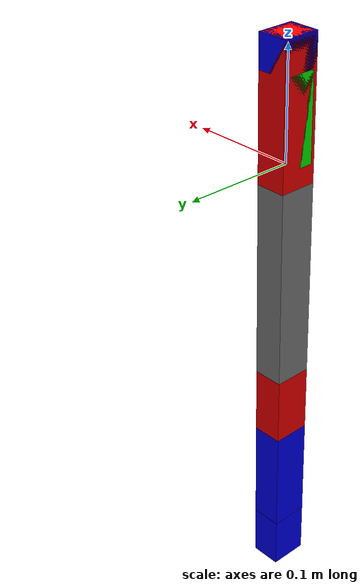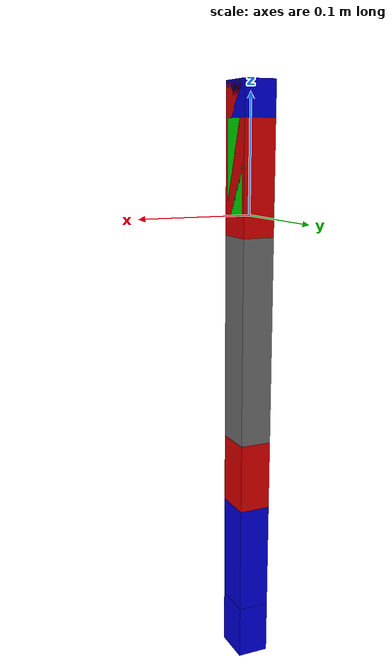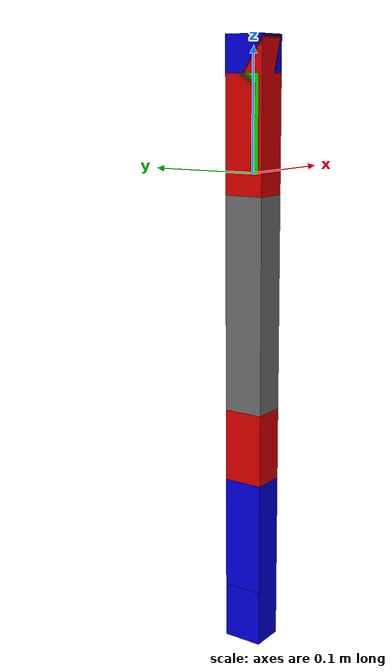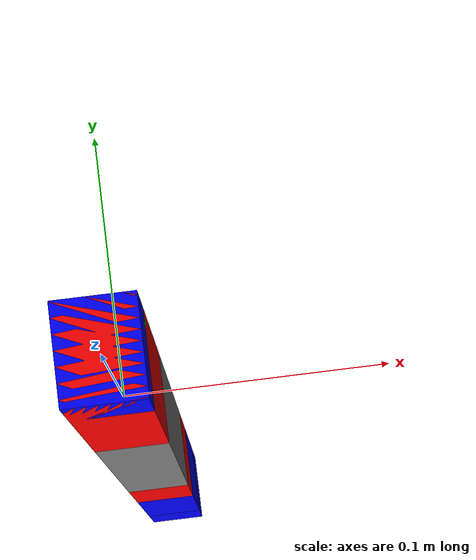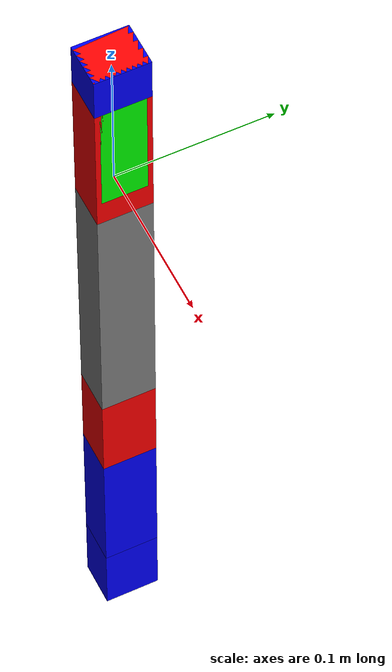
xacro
<?xml version="1.0"?>
<robot xmlns:xacro="http://www.ros.org/wiki/xacro" name="greenguardian">
    <xacro:arg name="initial_positions_file" default="initial_positions.yaml" />

    <!-- Import greenguardian urdf file -->
    <xacro:include filename="$(find guardian_description)/urdf/extra/manipulator.urdf" />

    <!-- Import control_xacro -->
    <xacro:include filename="greenguardian.ros2_control.xacro" />

    <xacro:greenguardian_ros2_control name="FakeSystem" initial_positions_file="$(arg initial_positions_file)"/>

</robot>

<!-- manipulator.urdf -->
<!-- |    This document was autogenerated by xacro from robot.urdf.xacro               | -->
<!-- |    EDITING THIS FILE BY HAND IS NOT RECOMMENDED                                 | -->
<robot name="greenguardian">
  <link name="world"/>
  <material name="black">
    <color rgba="0 0 0 1"/>
  </material>
  <material name="grey">
    <color rgba="0.5 0.5 0.5 1"/>
  </material>
  <material name="white">
    <color rgba="1 1 1 1"/>
  </material>
  <material name="red">
    <color rgba="1 0 0 1"/>
  </material>
  <material name="green">
    <color rgba="0 1 0 1"/>
  </material>
  <material name="blue">
    <color rgba="0 0 1 1"/>
  </material>
  <link name="manipulator_base_link">
    <visual>
      <origin rpy="0 0 0" xyz="0 0 0.03965"/>
      <geometry>
        <box size="0.0285 0.0285 0.0793"/>
      </geometry>
      <material name="green"/>
    </visual>
    <collision>
      <origin rpy="0 0 0" xyz="0 0 0.03965"/>
      <geometry>
        <box size="0.0285 0.0285 0.0793"/>
      </geometry>
    </collision>
    <inertial>
      <origin rpy="0 0 0" xyz="0 0 0.03965"/>
      <mass value="1.0"/>
      <inertia ixx="0.0005917283333333333" ixy="0.0" ixz="0.0" iyy="0.0005917283333333333" iyz="0.0" izz="0.000135375"/>
    </inertial>
  </link>
  <link name="link_1">
    <visual>
      <origin rpy="0 0 0" xyz="0 0 0.015"/>
      <geometry>
        <box size="0.0285 0.035 0.03"/>
      </geometry>
      <material name="blue"/>
    </visual>
    <collision>
      <origin rpy="0 0 0" xyz="0 0 0.015"/>
      <geometry>
        <box size="0.0285 0.035 0.03"/>
      </geometry>
    </collision>
    <inertial>
      <origin rpy="0 0 0" xyz="0 0 0.015"/>
      <mass value="1.0"/>
      <inertia ixx="0.00017708333333333335" ixy="0.0" ixz="0.0" iyy="0.0001426875" iyz="0.0" izz="0.00016977083333333332"/>
    </inertial>
  </link>
  <link name="link_2">
    <visual>
      <origin rpy="0 0 0" xyz="0 0 0.0635"/>
      <geometry>
        <box size="0.0285 0.035 0.127"/>
      </geometry>
      <material name="red"/>
    </visual>
    <collision>
      <origin rpy="0 0 0" xyz="0 0 0.0635"/>
      <geometry>
        <box size="0.0285 0.035 0.127"/>
      </geometry>
    </collision>
    <inertial>
      <origin rpy="0 0 0" xyz="0 0 0.0635"/>
      <mass value="1.0"/>
      <inertia ixx="0.0014461666666666668" ixy="0.0" ixz="0.0" iyy="0.0014117708333333335" iyz="0.0" izz="0.00016977083333333332"/>
    </inertial>
  </link>
  <link name="link_3">
    <visual>
      <origin rpy="0 0 0" xyz="0 0 0.092075"/>
      <geometry>
        <box size="0.0285 0.035 0.18415"/>
      </geometry>
      <material name="grey"/>
    </visual>
    <collision>
      <origin rpy="0 0 0" xyz="0 0 0.092075"/>
      <geometry>
        <box size="0.0285 0.035 0.18415"/>
      </geometry>
    </collision>
    <inertial>
      <origin rpy="0 0 0" xyz="0 0 0.092075"/>
      <mass value="1.0"/>
      <inertia ixx="0.0029280185416666665" ixy="0.0" ixz="0.0" iyy="0.0028936227083333336" iyz="0.0" izz="0.00016977083333333332"/>
    </inertial>
  </link>
  <link name="link_4">
    <visual>
      <origin rpy="0 0 0" xyz="0 0 0.03175"/>
      <geometry>
        <box size="0.0285 0.035 0.0635"/>
      </geometry>
      <material name="red"/>
    </visual>
    <collision>
      <origin rpy="0 0 0" xyz="0 0 0.03175"/>
      <geometry>
        <box size="0.0285 0.035 0.0635"/>
      </geometry>
    </collision>
    <inertial>
      <origin rpy="0 0 0" xyz="0 0 0.03175"/>
      <mass value="1.0"/>
      <inertia ixx="0.0004381041666666667" ixy="0.0" ixz="0.0" iyy="0.0004037083333333333" iyz="0.0" izz="0.00016977083333333332"/>
    </inertial>
  </link>
  <link name="link_5">
    <visual>
      <origin rpy="0 0 0" xyz="0 0 0.05"/>
      <geometry>
        <box size="0.0285 0.035 0.1"/>
      </geometry>
      <material name="blue"/>
    </visual>
    <collision>
      <origin rpy="0 0 0" xyz="0 0 0.05"/>
      <geometry>
        <box size="0.0285 0.035 0.1"/>
      </geometry>
    </collision>
    <inertial>
      <origin rpy="0 0 0" xyz="0 0 0.05"/>
      <mass value="1.0"/>
      <inertia ixx="0.0009354166666666669" ixy="0.0" ixz="0.0" iyy="0.0009010208333333335" iyz="0.0" izz="0.00016977083333333332"/>
    </inertial>
  </link>
  <link name="link_6">
    <visual>
      <origin rpy="0 0 0" xyz="0 0 0.025"/>
      <geometry>
        <box size="0.0285 0.035 0.05"/>
      </geometry>
      <material name="blue"/>
    </visual>
    <collision>
      <origin rpy="0 0 0" xyz="0 0 0.025"/>
      <geometry>
        <box size="0.0285 0.035 0.05"/>
      </geometry>
    </collision>
    <inertial>
      <origin rpy="0 0 0" xyz="0 0 0.025"/>
      <mass value="1.0"/>
      <inertia ixx="0.00031041666666666674" ixy="0.0" ixz="0.0" iyy="0.00027602083333333336" iyz="0.0" izz="0.00016977083333333332"/>
    </inertial>
  </link>
  <!-- Joints -->
  <joint name="base_joint" type="fixed">
    <parent link="world"/>
    <origin rpy="0 0 0" xyz="0 0 0"/>
    <child link="manipulator_base_link"/>
    <axis xyz="0 0 1"/>
  </joint>
  <joint name="joint_1" type="revolute">
    <parent link="manipulator_base_link"/>
    <child link="link_1"/>
    <origin rpy="0 0 0" xyz="0 0 0.0793"/>
    <axis xyz="0 0 1"/>
    <limit effort="1000.0" lower="0.0" upper="3.141592653589793" velocity="2.5"/>
  </joint>
  <joint name="joint_2" type="revolute">
    <parent link="link_1"/>
    <child link="link_2"/>
    <origin rpy="0 3.141592653589793 0" xyz="0 0 0.03"/>
    <axis xyz="0 -1 0"/>
    <limit effort="1000.0" lower="0.0" upper="3.141592653589793" velocity="2.5"/>
  </joint>
  <joint name="joint_3" type="revolute">
    <parent link="link_2"/>
    <child link="link_3"/>
    <origin rpy="0 0 0" xyz="0 0 0.127"/>
    <axis xyz="0 1 0"/>
    <limit effort="1000.0" lower="0.0" upper="3.141592653589793" velocity="2.5"/>
  </joint>
  <joint name="joint_4" type="revolute">
    <parent link="link_3"/>
    <child link="link_4"/>
    <origin rpy="0 0 0" xyz="0 0 0.18415"/>
    <axis xyz="0 1 0"/>
    <limit effort="1000.0" lower="0.0" upper="3.141592653589793" velocity="2.5"/>
  </joint>
  <joint name="joint_5" type="revolute">
    <parent link="link_4"/>
    <child link="link_5"/>
    <origin rpy="0 0 0" xyz="0 0 0.0635"/>
    <axis xyz="0 0 1"/>
    <limit effort="1000.0" lower="0.0" upper="3.141592653589793" velocity="2.5"/>
  </joint>
  <joint name="joint_6" type="revolute">
    <parent link="link_5"/>
    <child link="link_6"/>
    <origin rpy="0 0 0" xyz="0 0 0.1"/>
    <axis xyz="0 0 1"/>
    <limit effort="1000.0" lower="0.0" upper="3.141592653589793" velocity="2.5"/>
  </joint>
</robot>
